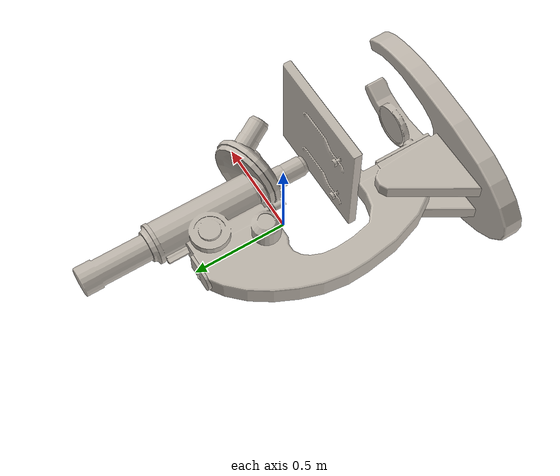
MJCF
<mujoco model="9916fb71c72740029f9b50f028cd2540">
  <default>
    <default class="visual">
      <geom group="2" type="mesh" contype="0" conaffinity="0"/>
    </default>
    <default class="collision">
      <geom group="3" type="mesh"/>
    </default>
  </default>
  <asset>
    <texture type="2d" name="material_0" file="material_0.png"/>
    <material name="material_0" texture="material_0" specular="0.4000000000000001" shininess="0.001"/>
    <mesh file="9916fb71c72740029f9b50f028cd2540/9916fb71c72740029f9b50f028cd2540.obj"/>
    <mesh file="9916fb71c72740029f9b50f028cd2540/9916fb71c72740029f9b50f028cd2540_collision_0.obj"/>
    <mesh file="9916fb71c72740029f9b50f028cd2540/9916fb71c72740029f9b50f028cd2540_collision_1.obj"/>
    <mesh file="9916fb71c72740029f9b50f028cd2540/9916fb71c72740029f9b50f028cd2540_collision_2.obj"/>
    <mesh file="9916fb71c72740029f9b50f028cd2540/9916fb71c72740029f9b50f028cd2540_collision_3.obj"/>
    <mesh file="9916fb71c72740029f9b50f028cd2540/9916fb71c72740029f9b50f028cd2540_collision_4.obj"/>
    <mesh file="9916fb71c72740029f9b50f028cd2540/9916fb71c72740029f9b50f028cd2540_collision_5.obj"/>
    <mesh file="9916fb71c72740029f9b50f028cd2540/9916fb71c72740029f9b50f028cd2540_collision_6.obj"/>
    <mesh file="9916fb71c72740029f9b50f028cd2540/9916fb71c72740029f9b50f028cd2540_collision_7.obj"/>
    <mesh file="9916fb71c72740029f9b50f028cd2540/9916fb71c72740029f9b50f028cd2540_collision_8.obj"/>
    <mesh file="9916fb71c72740029f9b50f028cd2540/9916fb71c72740029f9b50f028cd2540_collision_9.obj"/>
    <mesh file="9916fb71c72740029f9b50f028cd2540/9916fb71c72740029f9b50f028cd2540_collision_10.obj"/>
    <mesh file="9916fb71c72740029f9b50f028cd2540/9916fb71c72740029f9b50f028cd2540_collision_11.obj"/>
    <mesh file="9916fb71c72740029f9b50f028cd2540/9916fb71c72740029f9b50f028cd2540_collision_12.obj"/>
    <mesh file="9916fb71c72740029f9b50f028cd2540/9916fb71c72740029f9b50f028cd2540_collision_13.obj"/>
    <mesh file="9916fb71c72740029f9b50f028cd2540/9916fb71c72740029f9b50f028cd2540_collision_14.obj"/>
    <mesh file="9916fb71c72740029f9b50f028cd2540/9916fb71c72740029f9b50f028cd2540_collision_15.obj"/>
    <mesh file="9916fb71c72740029f9b50f028cd2540/9916fb71c72740029f9b50f028cd2540_collision_16.obj"/>
    <mesh file="9916fb71c72740029f9b50f028cd2540/9916fb71c72740029f9b50f028cd2540_collision_17.obj"/>
    <mesh file="9916fb71c72740029f9b50f028cd2540/9916fb71c72740029f9b50f028cd2540_collision_18.obj"/>
    <mesh file="9916fb71c72740029f9b50f028cd2540/9916fb71c72740029f9b50f028cd2540_collision_19.obj"/>
    <mesh file="9916fb71c72740029f9b50f028cd2540/9916fb71c72740029f9b50f028cd2540_collision_20.obj"/>
    <mesh file="9916fb71c72740029f9b50f028cd2540/9916fb71c72740029f9b50f028cd2540_collision_21.obj"/>
    <mesh file="9916fb71c72740029f9b50f028cd2540/9916fb71c72740029f9b50f028cd2540_collision_22.obj"/>
    <mesh file="9916fb71c72740029f9b50f028cd2540/9916fb71c72740029f9b50f028cd2540_collision_23.obj"/>
    <mesh file="9916fb71c72740029f9b50f028cd2540/9916fb71c72740029f9b50f028cd2540_collision_24.obj"/>
    <mesh file="9916fb71c72740029f9b50f028cd2540/9916fb71c72740029f9b50f028cd2540_collision_25.obj"/>
    <mesh file="9916fb71c72740029f9b50f028cd2540/9916fb71c72740029f9b50f028cd2540_collision_26.obj"/>
    <mesh file="9916fb71c72740029f9b50f028cd2540/9916fb71c72740029f9b50f028cd2540_collision_27.obj"/>
    <mesh file="9916fb71c72740029f9b50f028cd2540/9916fb71c72740029f9b50f028cd2540_collision_28.obj"/>
    <mesh file="9916fb71c72740029f9b50f028cd2540/9916fb71c72740029f9b50f028cd2540_collision_29.obj"/>
    <mesh file="9916fb71c72740029f9b50f028cd2540/9916fb71c72740029f9b50f028cd2540_collision_30.obj"/>
    <mesh file="9916fb71c72740029f9b50f028cd2540/9916fb71c72740029f9b50f028cd2540_collision_31.obj"/>
    <mesh file="9916fb71c72740029f9b50f028cd2540/9916fb71c72740029f9b50f028cd2540_collision_32.obj"/>
    <mesh file="9916fb71c72740029f9b50f028cd2540/9916fb71c72740029f9b50f028cd2540_collision_33.obj"/>
  </asset>
  <worldbody>
    <geom material="material_0" mesh="9916fb71c72740029f9b50f028cd2540" class="visual" mass="1"/>
    <geom mesh="9916fb71c72740029f9b50f028cd2540_collision_0" rgba="0.14189497308080545 0.44438182691757633 0.17033278763683435 1" class="collision" density="100"/>
    <geom mesh="9916fb71c72740029f9b50f028cd2540_collision_1" rgba="0.6600468043362159 0.2601068042714989 0.3524049128138188 1" class="collision" density="100"/>
    <geom mesh="9916fb71c72740029f9b50f028cd2540_collision_2" rgba="0.9500519655311898 0.22649716832226807 0.9526093568219043 1" class="collision" density="100"/>
    <geom mesh="9916fb71c72740029f9b50f028cd2540_collision_3" rgba="0.24782347674167304 0.06695854120765421 0.576778523840364 1" class="collision" density="100"/>
    <geom mesh="9916fb71c72740029f9b50f028cd2540_collision_4" rgba="0.7259490873366292 0.5872613528048141 0.23814402330198992 1" class="collision" density="100"/>
    <geom mesh="9916fb71c72740029f9b50f028cd2540_collision_5" rgba="0.9969353786002761 0.698320993051928 0.024702883335222747 1" class="collision" density="100"/>
    <geom mesh="9916fb71c72740029f9b50f028cd2540_collision_6" rgba="0.6262813835531499 0.15174363144294634 0.19930897319067575 1" class="collision" density="100"/>
    <geom mesh="9916fb71c72740029f9b50f028cd2540_collision_7" rgba="0.20161298946593198 0.2700377722019951 0.6576176591814192 1" class="collision" density="100"/>
    <geom mesh="9916fb71c72740029f9b50f028cd2540_collision_8" rgba="0.9190572150198327 0.5299187149758912 0.5684671599768214 1" class="collision" density="100"/>
    <geom mesh="9916fb71c72740029f9b50f028cd2540_collision_9" rgba="0.8537312591186867 0.32626057864640845 0.7205537986737445 1" class="collision" density="100"/>
    <geom mesh="9916fb71c72740029f9b50f028cd2540_collision_10" rgba="0.8584012212020783 0.623913554306145 0.10832721152962377 1" class="collision" density="100"/>
    <geom mesh="9916fb71c72740029f9b50f028cd2540_collision_11" rgba="0.46947422006101747 0.035676489380542464 0.589883593451423 1" class="collision" density="100"/>
    <geom mesh="9916fb71c72740029f9b50f028cd2540_collision_12" rgba="0.7502001576299148 0.7582841885071774 0.6361980901786483 1" class="collision" density="100"/>
    <geom mesh="9916fb71c72740029f9b50f028cd2540_collision_13" rgba="0.5203205945357825 0.7561350570468212 0.6019551637824271 1" class="collision" density="100"/>
    <geom mesh="9916fb71c72740029f9b50f028cd2540_collision_14" rgba="0.34252191261005194 0.3136023376645106 0.23332988975759117 1" class="collision" density="100"/>
    <geom mesh="9916fb71c72740029f9b50f028cd2540_collision_15" rgba="0.056861580306049486 0.7318091305693805 0.8273858881399527 1" class="collision" density="100"/>
    <geom mesh="9916fb71c72740029f9b50f028cd2540_collision_16" rgba="0.2552983322744832 0.5443930162045053 0.1239339057179275 1" class="collision" density="100"/>
    <geom mesh="9916fb71c72740029f9b50f028cd2540_collision_17" rgba="0.6223660043411869 0.8262726962226192 0.32938030111201233 1" class="collision" density="100"/>
    <geom mesh="9916fb71c72740029f9b50f028cd2540_collision_18" rgba="0.5058526887749957 0.21934034013750403 0.04709142130903976 1" class="collision" density="100"/>
    <geom mesh="9916fb71c72740029f9b50f028cd2540_collision_19" rgba="0.9222462146264097 0.7023557754969912 0.5948349953984674 1" class="collision" density="100"/>
    <geom mesh="9916fb71c72740029f9b50f028cd2540_collision_20" rgba="0.9928805368785653 0.9532201240477416 0.11841525238735151 1" class="collision" density="100"/>
    <geom mesh="9916fb71c72740029f9b50f028cd2540_collision_21" rgba="0.8091595275629352 0.7821261205928204 0.3643251976098516 1" class="collision" density="100"/>
    <geom mesh="9916fb71c72740029f9b50f028cd2540_collision_22" rgba="0.8688158433232245 0.12830355764464707 0.4268044793426554 1" class="collision" density="100"/>
    <geom mesh="9916fb71c72740029f9b50f028cd2540_collision_23" rgba="0.5389159483800104 0.09473633931735514 0.739215477156375 1" class="collision" density="100"/>
    <geom mesh="9916fb71c72740029f9b50f028cd2540_collision_24" rgba="0.40623038267888556 0.8855889335013251 0.8999577331969113 1" class="collision" density="100"/>
    <geom mesh="9916fb71c72740029f9b50f028cd2540_collision_25" rgba="0.0821778349915514 0.9140893520962101 0.2148390206920684 1" class="collision" density="100"/>
    <geom mesh="9916fb71c72740029f9b50f028cd2540_collision_26" rgba="0.3700574623681059 0.5403111571150206 0.4634699557934845 1" class="collision" density="100"/>
    <geom mesh="9916fb71c72740029f9b50f028cd2540_collision_27" rgba="0.3866586330374253 0.04500272349844692 0.3066133459733079 1" class="collision" density="100"/>
    <geom mesh="9916fb71c72740029f9b50f028cd2540_collision_28" rgba="0.682270845519221 0.35332048883627143 0.6497113890957403 1" class="collision" density="100"/>
    <geom mesh="9916fb71c72740029f9b50f028cd2540_collision_29" rgba="0.5514169499370406 0.43818307338782325 0.4488667038818923 1" class="collision" density="100"/>
    <geom mesh="9916fb71c72740029f9b50f028cd2540_collision_30" rgba="0.9704496905443943 0.6295505992790601 0.8994305881262179 1" class="collision" density="100"/>
    <geom mesh="9916fb71c72740029f9b50f028cd2540_collision_31" rgba="0.16352767959246006 0.175698642998793 0.15328775292227503 1" class="collision" density="100"/>
    <geom mesh="9916fb71c72740029f9b50f028cd2540_collision_32" rgba="0.5223759356971199 0.3987784027132326 0.8924065234813859 1" class="collision" density="100"/>
    <geom mesh="9916fb71c72740029f9b50f028cd2540_collision_33" rgba="0.3278530855236963 0.21961918099306288 0.4077505315624964 1" class="collision" density="100"/>
  </worldbody>
</mujoco>
